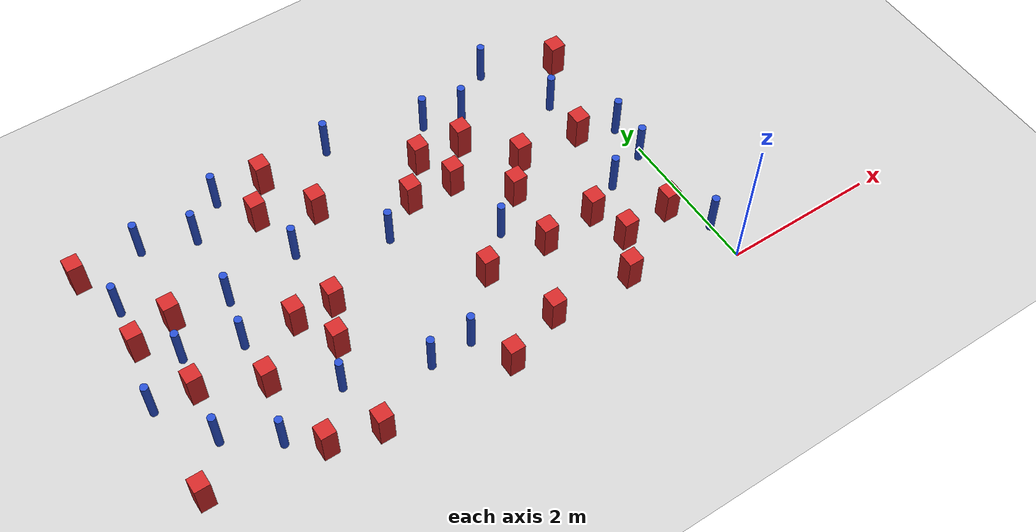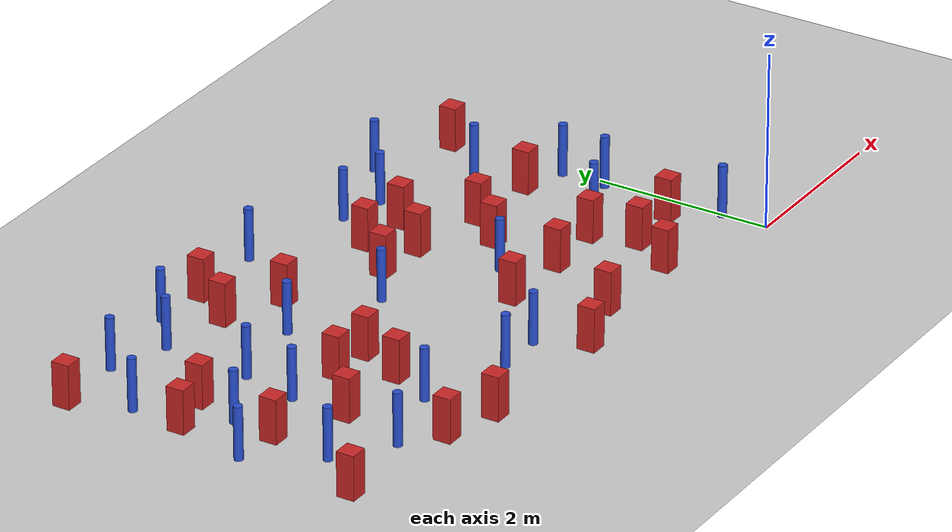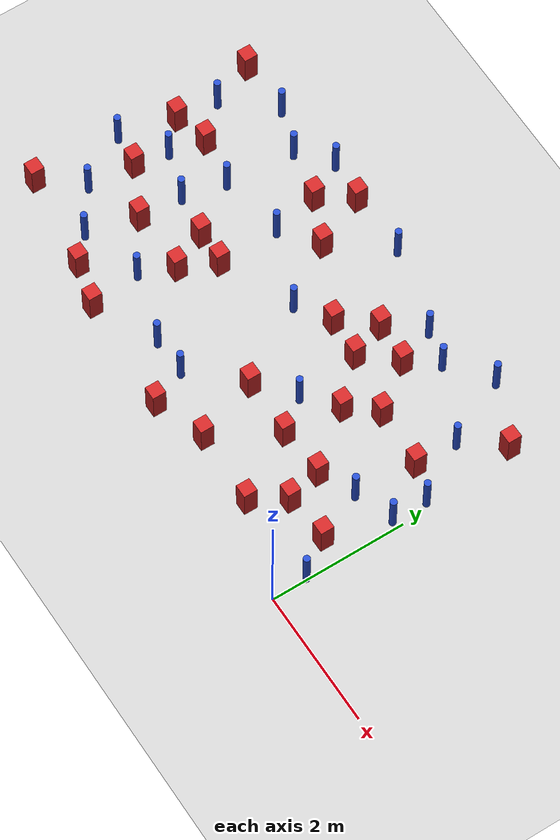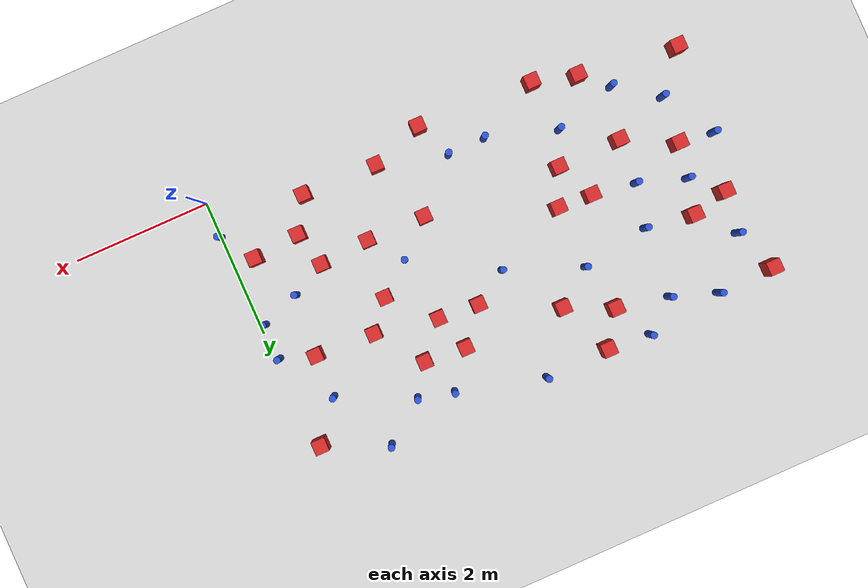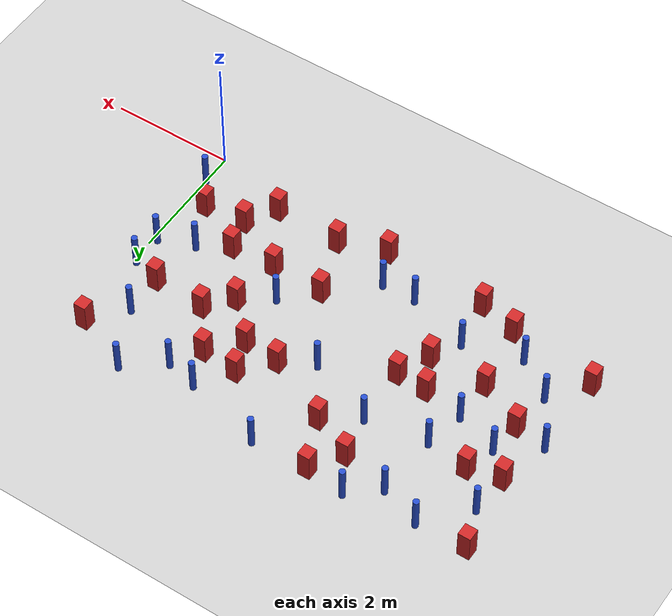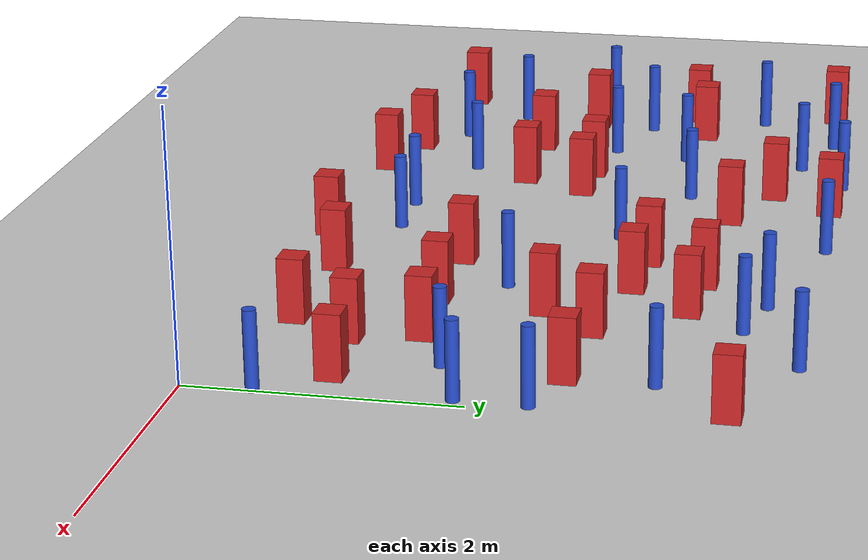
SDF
<sdf version="1.6">
 <world name="default">
  <model name="ground_plane">
   <static>1</static>
   <link name="link">
    <collision name="collision">
     <geometry><plane><normal>0 0 1</normal><size>100 100</size></plane></geometry>
     <surface><friction><ode><mu>100</mu><mu2>50</mu2></ode></friction></surface>
    </collision>
    <visual name="visual">
     <cast_shadows>0</cast_shadows>
     <geometry><plane><normal>0 0 1</normal><size>100 100</size></plane></geometry>
     <material>
      <ambient>1.0 1.0 1.0 1.0</ambient>
      <diffuse>0.8 0.8 0.8 1.0</diffuse>
      <specular>0.01 0.01 0.01 1.000000</specular>
     </material>
    </visual>
   </link>
  </model>
  <model name="square_post_obstacle5">
   <static>true</static>
   <pose>-1.02708775562 0.930661473114 -6.11067671241e-07 -5.50515727128e-06 -8.79689657224e-07 2.37013304536e-05</pose>
   <link name="link">
    <pose>0 0 0.25 0 -0 0</pose>
    <inertial>
     <mass>100</mass>
     <inertia>
      <ixx>0.166667</ixx>
      <ixy>0</ixy>
      <ixz>0</ixz>
      <iyy>0.166667</iyy>
      <iyz>0</iyz>
      <izz>0.166667</izz>
     </inertia>
    </inertial>
    <collision name="collision"><geometry><box><size>.2 .2 .5</size></box></geometry></collision>
    <visual name="visual">
     <geometry><box><size>.2 .2 .5</size></box></geometry>
     <material>
      <script><name>Gazebo/Red</name><uri>file://media/materials/scripts/gazebo.material</uri></script>
     </material>
    </visual>
   </link>
  </model>
  <model name="square_post_obstacle12">
   <static>true</static>
   <pose>-1.78063560245 2.22780262539 -6.11067671241e-07 -5.50515727128e-06 -8.79689657224e-07 2.37013304536e-05</pose>
   <link name="link">
    <pose>0 0 0.25 0 -0 0</pose>
    <inertial>
     <mass>100</mass>
     <inertia>
      <ixx>0.166667</ixx>
      <ixy>0</ixy>
      <ixz>0</ixz>
      <iyy>0.166667</iyy>
      <iyz>0</iyz>
      <izz>0.166667</izz>
     </inertia>
    </inertial>
    <collision name="collision"><geometry><box><size>.2 .2 .5</size></box></geometry></collision>
    <visual name="visual">
     <geometry><box><size>.2 .2 .5</size></box></geometry>
     <material>
      <script><name>Gazebo/Red</name><uri>file://media/materials/scripts/gazebo.material</uri></script>
     </material>
    </visual>
   </link>
  </model>
  <model name="square_post_obstacle14">
   <static>true</static>
   <pose>-6.90483712652 4.03889079188 -6.11067671241e-07 -5.50515727128e-06 -8.79689657224e-07 2.37013304536e-05</pose>
   <link name="link">
    <pose>0 0 0.25 0 -0 0</pose>
    <inertial>
     <mass>100</mass>
     <inertia>
      <ixx>0.166667</ixx>
      <ixy>0</ixy>
      <ixz>0</ixz>
      <iyy>0.166667</iyy>
      <iyz>0</iyz>
      <izz>0.166667</izz>
     </inertia>
    </inertial>
    <collision name="collision"><geometry><box><size>.2 .2 .5</size></box></geometry></collision>
    <visual name="visual">
     <geometry><box><size>.2 .2 .5</size></box></geometry>
     <material>
      <script><name>Gazebo/Red</name><uri>file://media/materials/scripts/gazebo.material</uri></script>
     </material>
    </visual>
   </link>
  </model>
  <model name="square_post_obstacle15">
   <static>true</static>
   <pose>-2.41324345539 0.481723105533 -6.11067671241e-07 -5.50515727128e-06 -8.79689657224e-07 2.37013304536e-05</pose>
   <link name="link">
    <pose>0 0 0.25 0 -0 0</pose>
    <inertial>
     <mass>100</mass>
     <inertia>
      <ixx>0.166667</ixx>
      <ixy>0</ixy>
      <ixz>0</ixz>
      <iyy>0.166667</iyy>
      <iyz>0</iyz>
      <izz>0.166667</izz>
     </inertia>
    </inertial>
    <collision name="collision"><geometry><box><size>.2 .2 .5</size></box></geometry></collision>
    <visual name="visual">
     <geometry><box><size>.2 .2 .5</size></box></geometry>
     <material>
      <script><name>Gazebo/Red</name><uri>file://media/materials/scripts/gazebo.material</uri></script>
     </material>
    </visual>
   </link>
  </model>
  <model name="square_post_obstacle18">
   <static>true</static>
   <pose>-6.94622194283 0.672950551886 -6.11067671241e-07 -5.50515727128e-06 -8.79689657224e-07 2.37013304536e-05</pose>
   <link name="link">
    <pose>0 0 0.25 0 -0 0</pose>
    <inertial>
     <mass>100</mass>
     <inertia>
      <ixx>0.166667</ixx>
      <ixy>0</ixy>
      <ixz>0</ixz>
      <iyy>0.166667</iyy>
      <iyz>0</iyz>
      <izz>0.166667</izz>
     </inertia>
    </inertial>
    <collision name="collision"><geometry><box><size>.2 .2 .5</size></box></geometry></collision>
    <visual name="visual">
     <geometry><box><size>.2 .2 .5</size></box></geometry>
     <material>
      <script><name>Gazebo/Red</name><uri>file://media/materials/scripts/gazebo.material</uri></script>
     </material>
    </visual>
   </link>
  </model>
  <model name="pole_obstacle28">
   <static>true</static>
   <pose>-0.0778146053647 2.4180685182 -9.47619616065e-06 5.49618799737e-07 2.36310414067e-07 -1.55090534797e-07</pose>
   <link name="link">
    <pose>0 0 0.3 0 -0 0</pose>
    <inertial>
     <mass>1</mass>
     <inertia><ixx>0.145833</ixx><ixy>0</ixy><ixz>0</ixz><iyy>0.145833</iyy><iyz>0</iyz><izz>0.125</izz></inertia>
    </inertial>
    <collision name="collision">
     <geometry><cylinder><radius>0.05</radius><length>.6</length></cylinder></geometry>
    </collision>
    <visual name="visual">
     <geometry><cylinder><radius>0.05</radius><length>.6</length></cylinder></geometry>
     <material>
      <script><name>Gazebo/Blue</name><uri>file://media/materials/scripts/gazebo.material</uri></script>
     </material>
    </visual>
   </link>
  </model>
  <model name="pole_obstacle30">
   <static>true</static>
   <pose>-1.63279255385 3.70631219726 -9.47619616065e-06 5.49618799737e-07 2.36310414062e-07 -1.55090534798e-07</pose>
   <link name="link">
    <pose>0 0 0.3 0 -0 0</pose>
    <inertial>
     <mass>1</mass>
     <inertia><ixx>0.145833</ixx><ixy>0</ixy><ixz>0</ixz><iyy>0.145833</iyy><iyz>0</iyz><izz>0.125</izz></inertia>
    </inertial>
    <collision name="collision">
     <geometry><cylinder><radius>0.05</radius><length>.6</length></cylinder></geometry>
    </collision>
    <visual name="visual">
     <geometry><cylinder><radius>0.05</radius><length>.6</length></cylinder></geometry>
     <material>
      <script><name>Gazebo/Blue</name><uri>file://media/materials/scripts/gazebo.material</uri></script>
     </material>
    </visual>
   </link>
  </model>
  <model name="pole_obstacle40">
   <static>true</static>
   <pose>-3.43819581403 2.54374759198 -9.47619616065e-06 5.49618799737e-07 2.36310414051e-07 -1.55090534807e-07</pose>
   <link name="link">
    <pose>0 0 0.3 0 -0 0</pose>
    <inertial>
     <mass>1</mass>
     <inertia><ixx>0.145833</ixx><ixy>0</ixy><ixz>0</ixz><iyy>0.145833</iyy><iyz>0</iyz><izz>0.125</izz></inertia>
    </inertial>
    <collision name="collision">
     <geometry><cylinder><radius>0.05</radius><length>.6</length></cylinder></geometry>
    </collision>
    <visual name="visual">
     <geometry><cylinder><radius>0.05</radius><length>.6</length></cylinder></geometry>
     <material>
      <script><name>Gazebo/Blue</name><uri>file://media/materials/scripts/gazebo.material</uri></script>
     </material>
    </visual>
   </link>
  </model>
  <model name="square_post_obstacle47">
   <static>true</static>
   <pose>-3.99698166825 3.36427735715 -6.11067671241e-07 -5.50515727128e-06 -8.79689657224e-07 2.37013304536e-05</pose>
   <link name="link">
    <pose>0 0 0.25 0 -0 0</pose>
    <inertial>
     <mass>100</mass>
     <inertia>
      <ixx>0.166667</ixx>
      <ixy>0</ixy>
      <ixz>0</ixz>
      <iyy>0.166667</iyy>
      <iyz>0</iyz>
      <izz>0.166667</izz>
     </inertia>
    </inertial>
    <collision name="collision"><geometry><box><size>.2 .2 .5</size></box></geometry></collision>
    <visual name="visual">
     <geometry><box><size>.2 .2 .5</size></box></geometry>
     <material>
      <script><name>Gazebo/Red</name><uri>file://media/materials/scripts/gazebo.material</uri></script>
     </material>
    </visual>
   </link>
  </model>
  <model name="pole_obstacle46">
   <static>true</static>
   <pose>-4.97028101764 4.2121764863 -9.47619616065e-06 5.49618799737e-07 2.36310414037e-07 -1.55090534814e-07</pose>
   <link name="link">
    <pose>0 0 0.3 0 -0 0</pose>
    <inertial>
     <mass>1</mass>
     <inertia><ixx>0.145833</ixx><ixy>0</ixy><ixz>0</ixz><iyy>0.145833</iyy><iyz>0</iyz><izz>0.125</izz></inertia>
    </inertial>
    <collision name="collision">
     <geometry><cylinder><radius>0.05</radius><length>.6</length></cylinder></geometry>
    </collision>
    <visual name="visual">
     <geometry><cylinder><radius>0.05</radius><length>.6</length></cylinder></geometry>
     <material>
      <script><name>Gazebo/Blue</name><uri>file://media/materials/scripts/gazebo.material</uri></script>
     </material>
    </visual>
   </link>
  </model>
  <model name="pole_obstacle55">
   <static>true</static>
   <pose>-6.34404235454 2.42190194522 -9.47619616065e-06 5.49618799738e-07 2.36310414051e-07 -1.55090534805e-07</pose>
   <link name="link">
    <pose>0 0 0.3 0 -0 0</pose>
    <inertial>
     <mass>1</mass>
     <inertia><ixx>0.145833</ixx><ixy>0</ixy><ixz>0</ixz><iyy>0.145833</iyy><iyz>0</iyz><izz>0.125</izz></inertia>
    </inertial>
    <collision name="collision">
     <geometry><cylinder><radius>0.05</radius><length>.6</length></cylinder></geometry>
    </collision>
    <visual name="visual">
     <geometry><cylinder><radius>0.05</radius><length>.6</length></cylinder></geometry>
     <material>
      <script><name>Gazebo/Blue</name><uri>file://media/materials/scripts/gazebo.material</uri></script>
     </material>
    </visual>
   </link>
  </model>
  <model name="square_post_obstacle60">
   <static>true</static>
   <pose>-5.50705085248 0.473081557137 -6.11067671241e-07 -5.50515727128e-06 -8.79689657224e-07 2.37013304536e-05</pose>
   <link name="link">
    <pose>0 0 0.25 0 -0 0</pose>
    <inertial>
     <mass>100</mass>
     <inertia>
      <ixx>0.166667</ixx>
      <ixy>0</ixy>
      <ixz>0</ixz>
      <iyy>0.166667</iyy>
      <iyz>0</iyz>
      <izz>0.166667</izz>
     </inertia>
    </inertial>
    <collision name="collision"><geometry><box><size>.2 .2 .5</size></box></geometry></collision>
    <visual name="visual">
     <geometry><box><size>.2 .2 .5</size></box></geometry>
     <material>
      <script><name>Gazebo/Red</name><uri>file://media/materials/scripts/gazebo.material</uri></script>
     </material>
    </visual>
   </link>
  </model>
  <model name="pole_obstacle59">
   <static>true</static>
   <pose>-0.564830080519 3.2118362837 -9.47619616065e-06 5.49618799737e-07 2.36310414066e-07 -1.55090534797e-07</pose>
   <link name="link">
    <pose>0 0 0.3 0 -0 0</pose>
    <inertial>
     <mass>1</mass>
     <inertia><ixx>0.145833</ixx><ixy>0</ixy><ixz>0</ixz><iyy>0.145833</iyy><iyz>0</iyz><izz>0.125</izz></inertia>
    </inertial>
    <collision name="collision">
     <geometry><cylinder><radius>0.05</radius><length>.6</length></cylinder></geometry>
    </collision>
    <visual name="visual">
     <geometry><cylinder><radius>0.05</radius><length>.6</length></cylinder></geometry>
     <material>
      <script><name>Gazebo/Blue</name><uri>file://media/materials/scripts/gazebo.material</uri></script>
     </material>
    </visual>
   </link>
  </model>
  <model name="pole_obstacle67">
   <static>true</static>
   <pose>-4.52630731003 2.97929566587 -9.47619616065e-06 5.49618799738e-07 2.36310414051e-07 -1.55090534805e-07</pose>
   <link name="link">
    <pose>0 0 0.3 0 -0 0</pose>
    <inertial>
     <mass>1</mass>
     <inertia><ixx>0.145833</ixx><ixy>0</ixy><ixz>0</ixz><iyy>0.145833</iyy><iyz>0</iyz><izz>0.125</izz></inertia>
    </inertial>
    <collision name="collision">
     <geometry><cylinder><radius>0.05</radius><length>.6</length></cylinder></geometry>
    </collision>
    <visual name="visual">
     <geometry><cylinder><radius>0.05</radius><length>.6</length></cylinder></geometry>
     <material>
      <script><name>Gazebo/Blue</name><uri>file://media/materials/scripts/gazebo.material</uri></script>
     </material>
    </visual>
   </link>
  </model>
  <model name="pole_obstacle69">
   <static>true</static>
   <pose>-0.654718958268 1.692309668 -9.47619616065e-06 5.49618799738e-07 2.36310414061e-07 -1.55090534801e-07</pose>
   <link name="link">
    <pose>0 0 0.3 0 -0 0</pose>
    <inertial>
     <mass>1</mass>
     <inertia><ixx>0.145833</ixx><ixy>0</ixy><ixz>0</ixz><iyy>0.145833</iyy><iyz>0</iyz><izz>0.125</izz></inertia>
    </inertial>
    <collision name="collision">
     <geometry><cylinder><radius>0.05</radius><length>.6</length></cylinder></geometry>
    </collision>
    <visual name="visual">
     <geometry><cylinder><radius>0.05</radius><length>.6</length></cylinder></geometry>
     <material>
      <script><name>Gazebo/Blue</name><uri>file://media/materials/scripts/gazebo.material</uri></script>
     </material>
    </visual>
   </link>
  </model>
  <model name="pole_obstacle71">
   <static>true</static>
   <pose>-6.08727357549 4.06802186505 -9.47619616065e-06 5.49618799737e-07 2.36310414037e-07 -1.55090534814e-07</pose>
   <link name="link">
    <pose>0 0 0.3 0 -0 0</pose>
    <inertial>
     <mass>1</mass>
     <inertia><ixx>0.145833</ixx><ixy>0</ixy><ixz>0</ixz><iyy>0.145833</iyy><iyz>0</iyz><izz>0.125</izz></inertia>
    </inertial>
    <collision name="collision">
     <geometry><cylinder><radius>0.05</radius><length>.6</length></cylinder></geometry>
    </collision>
    <visual name="visual">
     <geometry><cylinder><radius>0.05</radius><length>.6</length></cylinder></geometry>
     <material>
      <script><name>Gazebo/Blue</name><uri>file://media/materials/scripts/gazebo.material</uri></script>
     </material>
    </visual>
   </link>
  </model>
  <model name="pole_obstacle79">
   <static>true</static>
   <pose>-6.48497653343 1.2310171275 -9.47619616065e-06 5.49618799738e-07 2.36310414071e-07 -1.55090534796e-07</pose>
   <link name="link">
    <pose>0 0 0.3 0 -0 0</pose>
    <inertial>
     <mass>1</mass>
     <inertia><ixx>0.145833</ixx><ixy>0</ixy><ixz>0</ixz><iyy>0.145833</iyy><iyz>0</iyz><izz>0.125</izz></inertia>
    </inertial>
    <collision name="collision">
     <geometry><cylinder><radius>0.05</radius><length>.6</length></cylinder></geometry>
    </collision>
    <visual name="visual">
     <geometry><cylinder><radius>0.05</radius><length>.6</length></cylinder></geometry>
     <material>
      <script><name>Gazebo/Blue</name><uri>file://media/materials/scripts/gazebo.material</uri></script>
     </material>
    </visual>
   </link>
  </model>
  <model name="pole_obstacle82">
   <static>true</static>
   <pose>-6.67159748859 3.40802826797 -9.47619616065e-06 5.49618799738e-07 2.36310414051e-07 -1.55090534805e-07</pose>
   <link name="link">
    <pose>0 0 0.3 0 -0 0</pose>
    <inertial>
     <mass>1</mass>
     <inertia><ixx>0.145833</ixx><ixy>0</ixy><ixz>0</ixz><iyy>0.145833</iyy><iyz>0</iyz><izz>0.125</izz></inertia>
    </inertial>
    <collision name="collision">
     <geometry><cylinder><radius>0.05</radius><length>.6</length></cylinder></geometry>
    </collision>
    <visual name="visual">
     <geometry><cylinder><radius>0.05</radius><length>.6</length></cylinder></geometry>
     <material>
      <script><name>Gazebo/Blue</name><uri>file://media/materials/scripts/gazebo.material</uri></script>
     </material>
    </visual>
   </link>
  </model>
  <model name="square_post_obstacle80">
   <static>true</static>
   <pose>-6.2043813095 2.92247462218 -6.11067671241e-07 -5.50515727128e-06 -8.79689657224e-07 2.37013304536e-05</pose>
   <link name="link">
    <pose>0 0 0.25 0 -0 0</pose>
    <inertial>
     <mass>100</mass>
     <inertia>
      <ixx>0.166667</ixx>
      <ixy>0</ixy>
      <ixz>0</ixz>
      <iyy>0.166667</iyy>
      <iyz>0</iyz>
      <izz>0.166667</izz>
     </inertia>
    </inertial>
    <collision name="collision"><geometry><box><size>.2 .2 .5</size></box></geometry></collision>
    <visual name="visual">
     <geometry><box><size>.2 .2 .5</size></box></geometry>
     <material>
      <script><name>Gazebo/Red</name><uri>file://media/materials/scripts/gazebo.material</uri></script>
     </material>
    </visual>
   </link>
  </model>
  <model name="pole_obstacle89">
   <static>true</static>
   <pose>-3.40497378444 4.17797629734 -9.47619616065e-06 5.49618799738e-07 2.3631041406e-07 -1.55090534801e-07</pose>
   <link name="link">
    <pose>0 0 0.3 0 -0 0</pose>
    <inertial>
     <mass>1</mass>
     <inertia><ixx>0.145833</ixx><ixy>0</ixy><ixz>0</ixz><iyy>0.145833</iyy><iyz>0</iyz><izz>0.125</izz></inertia>
    </inertial>
    <collision name="collision">
     <geometry><cylinder><radius>0.05</radius><length>.6</length></cylinder></geometry>
    </collision>
    <visual name="visual">
     <geometry><cylinder><radius>0.05</radius><length>.6</length></cylinder></geometry>
     <material>
      <script><name>Gazebo/Blue</name><uri>file://media/materials/scripts/gazebo.material</uri></script>
     </material>
    </visual>
   </link>
  </model>
  <model name="square_post_obstacle82">
   <static>true</static>
   <pose>-0.34001128822 0.989413544526 -6.11067671241e-07 -5.50515727128e-06 -8.79689657224e-07 2.37013304536e-05</pose>
   <link name="link">
    <pose>0 0 0.25 0 -0 0</pose>
    <inertial>
     <mass>100</mass>
     <inertia>
      <ixx>0.166667</ixx>
      <ixy>0</ixy>
      <ixz>0</ixz>
      <iyy>0.166667</iyy>
      <iyz>0</iyz>
      <izz>0.166667</izz>
     </inertia>
    </inertial>
    <collision name="collision"><geometry><box><size>.2 .2 .5</size></box></geometry></collision>
    <visual name="visual">
     <geometry><box><size>.2 .2 .5</size></box></geometry>
     <material>
      <script><name>Gazebo/Red</name><uri>file://media/materials/scripts/gazebo.material</uri></script>
     </material>
    </visual>
   </link>
  </model>
  <model name="pole_obstacle93">
   <static>true</static>
   <pose>-5.5135093125 2.8205001821 -9.47619616065e-06 5.49618799738e-07 2.36310414051e-07 -1.55090534805e-07</pose>
   <link name="link">
    <pose>0 0 0.3 0 -0 0</pose>
    <inertial>
     <mass>1</mass>
     <inertia><ixx>0.145833</ixx><ixy>0</ixy><ixz>0</ixz><iyy>0.145833</iyy><iyz>0</iyz><izz>0.125</izz></inertia>
    </inertial>
    <collision name="collision">
     <geometry><cylinder><radius>0.05</radius><length>.6</length></cylinder></geometry>
    </collision>
    <visual name="visual">
     <geometry><cylinder><radius>0.05</radius><length>.6</length></cylinder></geometry>
     <material>
      <script><name>Gazebo/Blue</name><uri>file://media/materials/scripts/gazebo.material</uri></script>
     </material>
    </visual>
   </link>
  </model>
  <model name="square_post_obstacle85">
   <static>true</static>
   <pose>-5.67270794278 1.53764994089 -6.11067671241e-07 -5.50515727128e-06 -8.79689657224e-07 2.37013304536e-05</pose>
   <link name="link">
    <pose>0 0 0.25 0 -0 0</pose>
    <inertial>
     <mass>100</mass>
     <inertia>
      <ixx>0.166667</ixx>
      <ixy>0</ixy>
      <ixz>0</ixz>
      <iyy>0.166667</iyy>
      <iyz>0</iyz>
      <izz>0.166667</izz>
     </inertia>
    </inertial>
    <collision name="collision"><geometry><box><size>.2 .2 .5</size></box></geometry></collision>
    <visual name="visual">
     <geometry><box><size>.2 .2 .5</size></box></geometry>
     <material>
      <script><name>Gazebo/Red</name><uri>file://media/materials/scripts/gazebo.material</uri></script>
     </material>
    </visual>
   </link>
  </model>
  <model name="square_post_obstacle88">
   <static>true</static>
   <pose>-2.34603082576 2.79874001601 -6.11067671241e-07 -5.50515727128e-06 -8.79689657224e-07 2.37013304536e-05</pose>
   <link name="link">
    <pose>0 0 0.25 0 -0 0</pose>
    <inertial>
     <mass>100</mass>
     <inertia>
      <ixx>0.166667</ixx>
      <ixy>0</ixy>
      <ixz>0</ixz>
      <iyy>0.166667</iyy>
      <iyz>0</iyz>
      <izz>0.166667</izz>
     </inertia>
    </inertial>
    <collision name="collision"><geometry><box><size>.2 .2 .5</size></box></geometry></collision>
    <visual name="visual">
     <geometry><box><size>.2 .2 .5</size></box></geometry>
     <material>
      <script><name>Gazebo/Red</name><uri>file://media/materials/scripts/gazebo.material</uri></script>
     </material>
    </visual>
   </link>
  </model>
  <model name="square_post_obstacle97">
   <static>true</static>
   <pose>-1.9290866341 3.26986392136 -6.11067671241e-07 -5.50515727128e-06 -8.79689657224e-07 2.37013304536e-05</pose>
   <link name="link">
    <pose>0 0 0.25 0 -0 0</pose>
    <inertial>
     <mass>100</mass>
     <inertia>
      <ixx>0.166667</ixx>
      <ixy>0</ixy>
      <ixz>0</ixz>
      <iyy>0.166667</iyy>
      <iyz>0</iyz>
      <izz>0.166667</izz>
     </inertia>
    </inertial>
    <collision name="collision"><geometry><box><size>.2 .2 .5</size></box></geometry></collision>
    <visual name="visual">
     <geometry><box><size>.2 .2 .5</size></box></geometry>
     <material>
      <script><name>Gazebo/Red</name><uri>file://media/materials/scripts/gazebo.material</uri></script>
     </material>
    </visual>
   </link>
  </model>
  <model name="square_post_obstacle104">
   <static>true</static>
   <pose>-2.73959307261 1.41418460787 -6.11067671241e-07 -5.50515727128e-06 -8.79689657224e-07 2.37013304536e-05</pose>
   <link name="link">
    <pose>0 0 0.25 0 -0 0</pose>
    <inertial>
     <mass>100</mass>
     <inertia>
      <ixx>0.166667</ixx>
      <ixy>0</ixy>
      <ixz>0</ixz>
      <iyy>0.166667</iyy>
      <iyz>0</iyz>
      <izz>0.166667</izz>
     </inertia>
    </inertial>
    <collision name="collision"><geometry><box><size>.2 .2 .5</size></box></geometry></collision>
    <visual name="visual">
     <geometry><box><size>.2 .2 .5</size></box></geometry>
     <material>
      <script><name>Gazebo/Red</name><uri>file://media/materials/scripts/gazebo.material</uri></script>
     </material>
    </visual>
   </link>
  </model>
  <model name="pole_obstacle119">
   <static>true</static>
   <pose>-3.96218952733 0.74505366172 -9.47619616076e-06 5.49618799749e-07 2.36310414108e-07 -1.55090534785e-07</pose>
   <link name="link">
    <pose>0 0 0.3 0 -0 0</pose>
    <inertial>
     <mass>1</mass>
     <inertia><ixx>0.145833</ixx><ixy>0</ixy><ixz>0</ixz><iyy>0.145833</iyy><iyz>0</iyz><izz>0.125</izz></inertia>
    </inertial>
    <collision name="collision">
     <geometry><cylinder><radius>0.05</radius><length>.6</length></cylinder></geometry>
    </collision>
    <visual name="visual">
     <geometry><cylinder><radius>0.05</radius><length>.6</length></cylinder></geometry>
     <material>
      <script><name>Gazebo/Blue</name><uri>file://media/materials/scripts/gazebo.material</uri></script>
     </material>
    </visual>
   </link>
  </model>
  <model name="pole_obstacle124">
   <static>true</static>
   <pose>-2.2465169489 1.86230927359 -9.47619616065e-06 5.49618799737e-07 2.36310414072e-07 -1.55090534793e-07</pose>
   <link name="link">
    <pose>0 0 0.3 0 -0 0</pose>
    <inertial>
     <mass>1</mass>
     <inertia><ixx>0.145833</ixx><ixy>0</ixy><ixz>0</ixz><iyy>0.145833</iyy><iyz>0</iyz><izz>0.125</izz></inertia>
    </inertial>
    <collision name="collision">
     <geometry><cylinder><radius>0.05</radius><length>.6</length></cylinder></geometry>
    </collision>
    <visual name="visual">
     <geometry><cylinder><radius>0.05</radius><length>.6</length></cylinder></geometry>
     <material>
      <script><name>Gazebo/Blue</name><uri>file://media/materials/scripts/gazebo.material</uri></script>
     </material>
    </visual>
   </link>
  </model>
  <model name="pole_obstacle128">
   <static>true</static>
   <pose>-3.40844692454 0.756229838405 -9.47619616065e-06 5.49618799737e-07 2.36310414035e-07 -1.55090534817e-07</pose>
   <link name="link">
    <pose>0 0 0.3 0 -0 0</pose>
    <inertial>
     <mass>1</mass>
     <inertia><ixx>0.145833</ixx><ixy>0</ixy><ixz>0</ixz><iyy>0.145833</iyy><iyz>0</iyz><izz>0.125</izz></inertia>
    </inertial>
    <collision name="collision">
     <geometry><cylinder><radius>0.05</radius><length>.6</length></cylinder></geometry>
    </collision>
    <visual name="visual">
     <geometry><cylinder><radius>0.05</radius><length>.6</length></cylinder></geometry>
     <material>
      <script><name>Gazebo/Blue</name><uri>file://media/materials/scripts/gazebo.material</uri></script>
     </material>
    </visual>
   </link>
  </model>
  <model name="pole_obstacle135">
   <static>true</static>
   <pose>-0.0888218975445 1.89839711442 -9.47619616065e-06 5.49618799737e-07 2.36310414058e-07 -1.55090534802e-07</pose>
   <link name="link">
    <pose>0 0 0.3 0 -0 0</pose>
    <inertial>
     <mass>1</mass>
     <inertia><ixx>0.145833</ixx><ixy>0</ixy><ixz>0</ixz><iyy>0.145833</iyy><iyz>0</iyz><izz>0.125</izz></inertia>
    </inertial>
    <collision name="collision">
     <geometry><cylinder><radius>0.05</radius><length>.6</length></cylinder></geometry>
    </collision>
    <visual name="visual">
     <geometry><cylinder><radius>0.05</radius><length>.6</length></cylinder></geometry>
     <material>
      <script><name>Gazebo/Blue</name><uri>file://media/materials/scripts/gazebo.material</uri></script>
     </material>
    </visual>
   </link>
  </model>
  <model name="square_post_obstacle122">
   <static>true</static>
   <pose>-5.00820689945 2.08828954132 -6.11067671241e-07 -5.50515727128e-06 -8.79689657224e-07 2.37013304536e-05</pose>
   <link name="link">
    <pose>0 0 0.25 0 -0 0</pose>
    <inertial>
     <mass>100</mass>
     <inertia>
      <ixx>0.166667</ixx>
      <ixy>0</ixy>
      <ixz>0</ixz>
      <iyy>0.166667</iyy>
      <iyz>0</iyz>
      <izz>0.166667</izz>
     </inertia>
    </inertial>
    <collision name="collision"><geometry><box><size>.2 .2 .5</size></box></geometry></collision>
    <visual name="visual">
     <geometry><box><size>.2 .2 .5</size></box></geometry>
     <material>
      <script><name>Gazebo/Red</name><uri>file://media/materials/scripts/gazebo.material</uri></script>
     </material>
    </visual>
   </link>
  </model>
  <model name="square_post_obstacle124">
   <static>true</static>
   <pose>-4.33938528144 4.14681998325 -6.11067671241e-07 -5.50515727128e-06 -8.79689657224e-07 2.37013304536e-05</pose>
   <link name="link">
    <pose>0 0 0.25 0 -0 0</pose>
    <inertial>
     <mass>100</mass>
     <inertia>
      <ixx>0.166667</ixx>
      <ixy>0</ixy>
      <ixz>0</ixz>
      <iyy>0.166667</iyy>
      <iyz>0</iyz>
      <izz>0.166667</izz>
     </inertia>
    </inertial>
    <collision name="collision"><geometry><box><size>.2 .2 .5</size></box></geometry></collision>
    <visual name="visual">
     <geometry><box><size>.2 .2 .5</size></box></geometry>
     <material>
      <script><name>Gazebo/Red</name><uri>file://media/materials/scripts/gazebo.material</uri></script>
     </material>
    </visual>
   </link>
  </model>
  <model name="pole_obstacle144">
   <static>true</static>
   <pose>-0.011041065608 0.519506056617 -9.47619616065e-06 5.49618799737e-07 2.36310414057e-07 -1.55090534801e-07</pose>
   <link name="link">
    <pose>0 0 0.3 0 -0 0</pose>
    <inertial>
     <mass>1</mass>
     <inertia><ixx>0.145833</ixx><ixy>0</ixy><ixz>0</ixz><iyy>0.145833</iyy><iyz>0</iyz><izz>0.125</izz></inertia>
    </inertial>
    <collision name="collision">
     <geometry><cylinder><radius>0.05</radius><length>.6</length></cylinder></geometry>
    </collision>
    <visual name="visual">
     <geometry><cylinder><radius>0.05</radius><length>.6</length></cylinder></geometry>
     <material>
      <script><name>Gazebo/Blue</name><uri>file://media/materials/scripts/gazebo.material</uri></script>
     </material>
    </visual>
   </link>
  </model>
  <model name="pole_obstacle147">
   <static>true</static>
   <pose>-5.88491714341 0.804301312748 -9.47619616065e-06 5.49618799737e-07 2.36310414061e-07 -1.550905348e-07</pose>
   <link name="link">
    <pose>0 0 0.3 0 -0 0</pose>
    <inertial>
     <mass>1</mass>
     <inertia><ixx>0.145833</ixx><ixy>0</ixy><ixz>0</ixz><iyy>0.145833</iyy><iyz>0</iyz><izz>0.125</izz></inertia>
    </inertial>
    <collision name="collision">
     <geometry><cylinder><radius>0.05</radius><length>.6</length></cylinder></geometry>
    </collision>
    <visual name="visual">
     <geometry><cylinder><radius>0.05</radius><length>.6</length></cylinder></geometry>
     <material>
      <script><name>Gazebo/Blue</name><uri>file://media/materials/scripts/gazebo.material</uri></script>
     </material>
    </visual>
   </link>
  </model>
  <model name="square_post_obstacle138">
   <static>true</static>
   <pose>-2.53078672062 3.32425130335 -6.11067671241e-07 -5.50515727128e-06 -8.79689657224e-07 2.37013304536e-05</pose>
   <link name="link">
    <pose>0 0 0.25 0 -0 0</pose>
    <inertial>
     <mass>100</mass>
     <inertia>
      <ixx>0.166667</ixx>
      <ixy>0</ixy>
      <ixz>0</ixz>
      <iyy>0.166667</iyy>
      <iyz>0</iyz>
      <izz>0.166667</izz>
     </inertia>
    </inertial>
    <collision name="collision"><geometry><box><size>.2 .2 .5</size></box></geometry></collision>
    <visual name="visual">
     <geometry><box><size>.2 .2 .5</size></box></geometry>
     <material>
      <script><name>Gazebo/Red</name><uri>file://media/materials/scripts/gazebo.material</uri></script>
     </material>
    </visual>
   </link>
  </model>
  <model name="square_post_obstacle143">
   <static>true</static>
   <pose>-4.50574054665 2.06219007305 -6.11067671241e-07 -5.50515727128e-06 -8.79689657224e-07 2.37013304536e-05</pose>
   <link name="link">
    <pose>0 0 0.25 0 -0 0</pose>
    <inertial>
     <mass>100</mass>
     <inertia>
      <ixx>0.166667</ixx>
      <ixy>0</ixy>
      <ixz>0</ixz>
      <iyy>0.166667</iyy>
      <iyz>0</iyz>
      <izz>0.166667</izz>
     </inertia>
    </inertial>
    <collision name="collision"><geometry><box><size>.2 .2 .5</size></box></geometry></collision>
    <visual name="visual">
     <geometry><box><size>.2 .2 .5</size></box></geometry>
     <material>
      <script><name>Gazebo/Red</name><uri>file://media/materials/scripts/gazebo.material</uri></script>
     </material>
    </visual>
   </link>
  </model>
  <model name="square_post_obstacle151">
   <static>true</static>
   <pose>-1.8841094277 1.39811113907 -6.11067671241e-07 -5.50515727128e-06 -8.79689657224e-07 2.37013304536e-05</pose>
   <link name="link">
    <pose>0 0 0.25 0 -0 0</pose>
    <inertial>
     <mass>100</mass>
     <inertia>
      <ixx>0.166667</ixx>
      <ixy>0</ixy>
      <ixz>0</ixz>
      <iyy>0.166667</iyy>
      <iyz>0</iyz>
      <izz>0.166667</izz>
     </inertia>
    </inertial>
    <collision name="collision"><geometry><box><size>.2 .2 .5</size></box></geometry></collision>
    <visual name="visual">
     <geometry><box><size>.2 .2 .5</size></box></geometry>
     <material>
      <script><name>Gazebo/Red</name><uri>file://media/materials/scripts/gazebo.material</uri></script>
     </material>
    </visual>
   </link>
  </model>
  <model name="square_post_obstacle155">
   <static>true</static>
   <pose>-4.74373086006 1.54422972182 -6.11067671241e-07 -5.50515727128e-06 -8.79689657224e-07 2.37013304536e-05</pose>
   <link name="link">
    <pose>0 0 0.25 0 -0 0</pose>
    <inertial>
     <mass>100</mass>
     <inertia>
      <ixx>0.166667</ixx>
      <ixy>0</ixy>
      <ixz>0</ixz>
      <iyy>0.166667</iyy>
      <iyz>0</iyz>
      <izz>0.166667</izz>
     </inertia>
    </inertial>
    <collision name="collision"><geometry><box><size>.2 .2 .5</size></box></geometry></collision>
    <visual name="visual">
     <geometry><box><size>.2 .2 .5</size></box></geometry>
     <material>
      <script><name>Gazebo/Red</name><uri>file://media/materials/scripts/gazebo.material</uri></script>
     </material>
    </visual>
   </link>
  </model>
  <model name="square_post_obstacle156">
   <static>true</static>
   <pose>-6.72830770492 2.79654914992 -6.11067671241e-07 -5.50515727128e-06 -8.79689657224e-07 2.37013304536e-05</pose>
   <link name="link">
    <pose>0 0 0.25 0 -0 0</pose>
    <inertial>
     <mass>100</mass>
     <inertia>
      <ixx>0.166667</ixx>
      <ixy>0</ixy>
      <ixz>0</ixz>
      <iyy>0.166667</iyy>
      <iyz>0</iyz>
      <izz>0.166667</izz>
     </inertia>
    </inertial>
    <collision name="collision"><geometry><box><size>.2 .2 .5</size></box></geometry></collision>
    <visual name="visual">
     <geometry><box><size>.2 .2 .5</size></box></geometry>
     <material>
      <script><name>Gazebo/Red</name><uri>file://media/materials/scripts/gazebo.material</uri></script>
     </material>
    </visual>
   </link>
  </model>
  <model name="pole_obstacle164">
   <static>true</static>
   <pose>-6.93370274711 1.98002495669 -9.47619616065e-06 5.49618799737e-07 2.36310414075e-07 -1.55090534793e-07</pose>
   <link name="link">
    <pose>0 0 0.3 0 -0 0</pose>
    <inertial>
     <mass>1</mass>
     <inertia><ixx>0.145833</ixx><ixy>0</ixy><ixz>0</ixz><iyy>0.145833</iyy><iyz>0</iyz><izz>0.125</izz></inertia>
    </inertial>
    <collision name="collision">
     <geometry><cylinder><radius>0.05</radius><length>.6</length></cylinder></geometry>
    </collision>
    <visual name="visual">
     <geometry><cylinder><radius>0.05</radius><length>.6</length></cylinder></geometry>
     <material>
      <script><name>Gazebo/Blue</name><uri>file://media/materials/scripts/gazebo.material</uri></script>
     </material>
    </visual>
   </link>
  </model>
  <model name="pole_obstacle168">
   <static>true</static>
   <pose>-2.14145672013 3.83668105222 -9.47619616065e-06 5.49618799737e-07 2.36310414051e-07 -1.55090534807e-07</pose>
   <link name="link">
    <pose>0 0 0.3 0 -0 0</pose>
    <inertial>
     <mass>1</mass>
     <inertia><ixx>0.145833</ixx><ixy>0</ixy><ixz>0</ixz><iyy>0.145833</iyy><iyz>0</iyz><izz>0.125</izz></inertia>
    </inertial>
    <collision name="collision">
     <geometry><cylinder><radius>0.05</radius><length>.6</length></cylinder></geometry>
    </collision>
    <visual name="visual">
     <geometry><cylinder><radius>0.05</radius><length>.6</length></cylinder></geometry>
     <material>
      <script><name>Gazebo/Blue</name><uri>file://media/materials/scripts/gazebo.material</uri></script>
     </material>
    </visual>
   </link>
  </model>
  <model name="pole_obstacle174">
   <static>true</static>
   <pose>-5.43290758991 3.83730431515 -9.47619616065e-06 5.49618799738e-07 2.36310414051e-07 -1.55090534805e-07</pose>
   <link name="link">
    <pose>0 0 0.3 0 -0 0</pose>
    <inertial>
     <mass>1</mass>
     <inertia><ixx>0.145833</ixx><ixy>0</ixy><ixz>0</ixz><iyy>0.145833</iyy><iyz>0</iyz><izz>0.125</izz></inertia>
    </inertial>
    <collision name="collision">
     <geometry><cylinder><radius>0.05</radius><length>.6</length></cylinder></geometry>
    </collision>
    <visual name="visual">
     <geometry><cylinder><radius>0.05</radius><length>.6</length></cylinder></geometry>
     <material>
      <script><name>Gazebo/Blue</name><uri>file://media/materials/scripts/gazebo.material</uri></script>
     </material>
    </visual>
   </link>
  </model>
  <model name="square_post_obstacle165">
   <static>true</static>
   <pose>-2.93642714685 2.84721926407 -6.11067671241e-07 -5.50515727128e-06 -8.79689657224e-07 2.37013304536e-05</pose>
   <link name="link">
    <pose>0 0 0.25 0 -0 0</pose>
    <inertial>
     <mass>100</mass>
     <inertia>
      <ixx>0.166667</ixx>
      <ixy>0</ixy>
      <ixz>0</ixz>
      <iyy>0.166667</iyy>
      <iyz>0</iyz>
      <izz>0.166667</izz>
     </inertia>
    </inertial>
    <collision name="collision"><geometry><box><size>.2 .2 .5</size></box></geometry></collision>
    <visual name="visual">
     <geometry><box><size>.2 .2 .5</size></box></geometry>
     <material>
      <script><name>Gazebo/Red</name><uri>file://media/materials/scripts/gazebo.material</uri></script>
     </material>
    </visual>
   </link>
  </model>
  <model name="square_post_obstacle168">
   <static>true</static>
   <pose>-1.15735054187 1.44198827305 -6.11067671241e-07 -5.50515727128e-06 -8.79689657224e-07 2.37013304536e-05</pose>
   <link name="link">
    <pose>0 0 0.25 0 -0 0</pose>
    <inertial>
     <mass>100</mass>
     <inertia>
      <ixx>0.166667</ixx>
      <ixy>0</ixy>
      <ixz>0</ixz>
      <iyy>0.166667</iyy>
      <iyz>0</iyz>
      <izz>0.166667</izz>
     </inertia>
    </inertial>
    <collision name="collision"><geometry><box><size>.2 .2 .5</size></box></geometry></collision>
    <visual name="visual">
     <geometry><box><size>.2 .2 .5</size></box></geometry>
     <material>
      <script><name>Gazebo/Red</name><uri>file://media/materials/scripts/gazebo.material</uri></script>
     </material>
    </visual>
   </link>
  </model>
  <model name="pole_obstacle181">
   <static>true</static>
   <pose>-1.03350130667 4.15740342679 -9.47619616065e-06 5.49618799737e-07 2.36310414062e-07 -1.55090534799e-07</pose>
   <link name="link">
    <pose>0 0 0.3 0 -0 0</pose>
    <inertial>
     <mass>1</mass>
     <inertia><ixx>0.145833</ixx><ixy>0</ixy><ixz>0</ixz><iyy>0.145833</iyy><iyz>0</iyz><izz>0.125</izz></inertia>
    </inertial>
    <collision name="collision">
     <geometry><cylinder><radius>0.05</radius><length>.6</length></cylinder></geometry>
    </collision>
    <visual name="visual">
     <geometry><cylinder><radius>0.05</radius><length>.6</length></cylinder></geometry>
     <material>
      <script><name>Gazebo/Blue</name><uri>file://media/materials/scripts/gazebo.material</uri></script>
     </material>
    </visual>
   </link>
  </model>
  <model name="pole_obstacle183">
   <static>true</static>
   <pose>-4.97457772755 1.0645492596 -9.47619616065e-06 5.49618799738e-07 2.36310414071e-07 -1.55090534796e-07</pose>
   <link name="link">
    <pose>0 0 0.3 0 -0 0</pose>
    <inertial>
     <mass>1</mass>
     <inertia><ixx>0.145833</ixx><ixy>0</ixy><ixz>0</ixz><iyy>0.145833</iyy><iyz>0</iyz><izz>0.125</izz></inertia>
    </inertial>
    <collision name="collision">
     <geometry><cylinder><radius>0.05</radius><length>.6</length></cylinder></geometry>
    </collision>
    <visual name="visual">
     <geometry><cylinder><radius>0.05</radius><length>.6</length></cylinder></geometry>
     <material>
      <script><name>Gazebo/Blue</name><uri>file://media/materials/scripts/gazebo.material</uri></script>
     </material>
    </visual>
   </link>
  </model>
  <model name="square_post_obstacle172">
   <static>true</static>
   <pose>-4.87810278293 0.303677250692 -6.11067671241e-07 -5.50515727128e-06 -8.79689657224e-07 2.37013304536e-05</pose>
   <link name="link">
    <pose>0 0 0.25 0 -0 0</pose>
    <inertial>
     <mass>100</mass>
     <inertia>
      <ixx>0.166667</ixx>
      <ixy>0</ixy>
      <ixz>0</ixz>
      <iyy>0.166667</iyy>
      <iyz>0</iyz>
      <izz>0.166667</izz>
     </inertia>
    </inertial>
    <collision name="collision"><geometry><box><size>.2 .2 .5</size></box></geometry></collision>
    <visual name="visual">
     <geometry><box><size>.2 .2 .5</size></box></geometry>
     <material>
      <script><name>Gazebo/Red</name><uri>file://media/materials/scripts/gazebo.material</uri></script>
     </material>
    </visual>
   </link>
  </model>
  <model name="square_post_obstacle174">
   <static>true</static>
   <pose>-3.17252354048 0.225440898317 -6.11067671241e-07 -5.50515727128e-06 -8.79689657224e-07 2.37013304536e-05</pose>
   <link name="link">
    <pose>0 0 0.25 0 -0 0</pose>
    <inertial>
     <mass>100</mass>
     <inertia>
      <ixx>0.166667</ixx>
      <ixy>0</ixy>
      <ixz>0</ixz>
      <iyy>0.166667</iyy>
      <iyz>0</iyz>
      <izz>0.166667</izz>
     </inertia>
    </inertial>
    <collision name="collision"><geometry><box><size>.2 .2 .5</size></box></geometry></collision>
    <visual name="visual">
     <geometry><box><size>.2 .2 .5</size></box></geometry>
     <material>
      <script><name>Gazebo/Red</name><uri>file://media/materials/scripts/gazebo.material</uri></script>
     </material>
    </visual>
   </link>
  </model>
  <model name="square_post_obstacle177">
   <static>true</static>
   <pose>-0.573744604127 2.57854149212 -6.11067671241e-07 -5.50515727128e-06 -8.79689657224e-07 2.37013304536e-05</pose>
   <link name="link">
    <pose>0 0 0.25 0 -0 0</pose>
    <inertial>
     <mass>100</mass>
     <inertia>
      <ixx>0.166667</ixx>
      <ixy>0</ixy>
      <ixz>0</ixz>
      <iyy>0.166667</iyy>
      <iyz>0</iyz>
      <izz>0.166667</izz>
     </inertia>
    </inertial>
    <collision name="collision"><geometry><box><size>.2 .2 .5</size></box></geometry></collision>
    <visual name="visual">
     <geometry><box><size>.2 .2 .5</size></box></geometry>
     <material>
      <script><name>Gazebo/Red</name><uri>file://media/materials/scripts/gazebo.material</uri></script>
     </material>
    </visual>
   </link>
  </model>
  <model name="square_post_obstacle179">
   <static>true</static>
   <pose>-1.32143316903 0.449779787548 -6.11067671241e-07 -5.50515727128e-06 -8.79689657224e-07 2.37013304536e-05</pose>
   <link name="link">
    <pose>0 0 0.25 0 -0 0</pose>
    <inertial>
     <mass>100</mass>
     <inertia>
      <ixx>0.166667</ixx>
      <ixy>0</ixy>
      <ixz>0</ixz>
      <iyy>0.166667</iyy>
      <iyz>0</iyz>
      <izz>0.166667</izz>
     </inertia>
    </inertial>
    <collision name="collision"><geometry><box><size>.2 .2 .5</size></box></geometry></collision>
    <visual name="visual">
     <geometry><box><size>.2 .2 .5</size></box></geometry>
     <material>
      <script><name>Gazebo/Red</name><uri>file://media/materials/scripts/gazebo.material</uri></script>
     </material>
    </visual>
   </link>
  </model>
  <model name="square_post_obstacle182">
   <static>true</static>
   <pose>-4.66652466124 3.66999546562 -6.11067671241e-07 -5.50515727128e-06 -8.79689657224e-07 2.37013304536e-05</pose>
   <link name="link">
    <pose>0 0 0.25 0 -0 0</pose>
    <inertial>
     <mass>100</mass>
     <inertia>
      <ixx>0.166667</ixx>
      <ixy>0</ixy>
      <ixz>0</ixz>
      <iyy>0.166667</iyy>
      <iyz>0</iyz>
      <izz>0.166667</izz>
     </inertia>
    </inertial>
    <collision name="collision"><geometry><box><size>.2 .2 .5</size></box></geometry></collision>
    <visual name="visual">
     <geometry><box><size>.2 .2 .5</size></box></geometry>
     <material>
      <script><name>Gazebo/Red</name><uri>file://media/materials/scripts/gazebo.material</uri></script>
     </material>
    </visual>
   </link>
  </model>
  <model name="square_post_obstacle191">
   <static>true</static>
   <pose>-1.43891872318 2.62823845209 -6.11067671241e-07 -5.50515727128e-06 -8.79689657224e-07 2.37013304536e-05</pose>
   <link name="link">
    <pose>0 0 0.25 0 -0 0</pose>
    <inertial>
     <mass>100</mass>
     <inertia>
      <ixx>0.166667</ixx>
      <ixy>0</ixy>
      <ixz>0</ixz>
      <iyy>0.166667</iyy>
      <iyz>0</iyz>
      <izz>0.166667</izz>
     </inertia>
    </inertial>
    <collision name="collision"><geometry><box><size>.2 .2 .5</size></box></geometry></collision>
    <visual name="visual">
     <geometry><box><size>.2 .2 .5</size></box></geometry>
     <material>
      <script><name>Gazebo/Red</name><uri>file://media/materials/scripts/gazebo.material</uri></script>
     </material>
    </visual>
   </link>
  </model>
  <model name="pole_obstacle205">
   <static>true</static>
   <pose>-5.6512315022 2.18924303675 -9.47619616065e-06 5.49618799738e-07 2.36310414051e-07 -1.55090534805e-07</pose>
   <link name="link">
    <pose>0 0 0.3 0 -0 0</pose>
    <inertial>
     <mass>1</mass>
     <inertia><ixx>0.145833</ixx><ixy>0</ixy><ixz>0</ixz><iyy>0.145833</iyy><iyz>0</iyz><izz>0.125</izz></inertia>
    </inertial>
    <collision name="collision">
     <geometry><cylinder><radius>0.05</radius><length>.6</length></cylinder></geometry>
    </collision>
    <visual name="visual">
     <geometry><cylinder><radius>0.05</radius><length>.6</length></cylinder></geometry>
     <material>
      <script><name>Gazebo/Blue</name><uri>file://media/materials/scripts/gazebo.material</uri></script>
     </material>
    </visual>
   </link>
  </model>
  <model name="square_post_obstacle199">
   <static>true</static>
   <pose>-6.41511618202 1.91465714521 -6.11067671241e-07 -5.50515727128e-06 -8.79689657224e-07 2.37013304536e-05</pose>
   <link name="link">
    <pose>0 0 0.25 0 -0 0</pose>
    <inertial>
     <mass>100</mass>
     <inertia>
      <ixx>0.166667</ixx>
      <ixy>0</ixy>
      <ixz>0</ixz>
      <iyy>0.166667</iyy>
      <iyz>0</iyz>
      <izz>0.166667</izz>
     </inertia>
    </inertial>
    <collision name="collision"><geometry><box><size>.2 .2 .5</size></box></geometry></collision>
    <visual name="visual">
     <geometry><box><size>.2 .2 .5</size></box></geometry>
     <material>
      <script><name>Gazebo/Red</name><uri>file://media/materials/scripts/gazebo.material</uri></script>
     </material>
    </visual>
   </link>
  </model>
  <model name="square_post_obstacle204">
   <static>true</static>
   <pose>-0.129607210021 3.75318954006 -6.11067671241e-07 -5.50515727128e-06 -8.79689657224e-07 2.37013304536e-05</pose>
   <link name="link">
    <pose>0 0 0.25 0 -0 0</pose>
    <inertial>
     <mass>100</mass>
     <inertia>
      <ixx>0.166667</ixx>
      <ixy>0</ixy>
      <ixz>0</ixz>
      <iyy>0.166667</iyy>
      <iyz>0</iyz>
      <izz>0.166667</izz>
     </inertia>
    </inertial>
    <collision name="collision"><geometry><box><size>.2 .2 .5</size></box></geometry></collision>
    <visual name="visual">
     <geometry><box><size>.2 .2 .5</size></box></geometry>
     <material>
      <script><name>Gazebo/Red</name><uri>file://media/materials/scripts/gazebo.material</uri></script>
     </material>
    </visual>
   </link>
  </model>
 </world>
</sdf>
